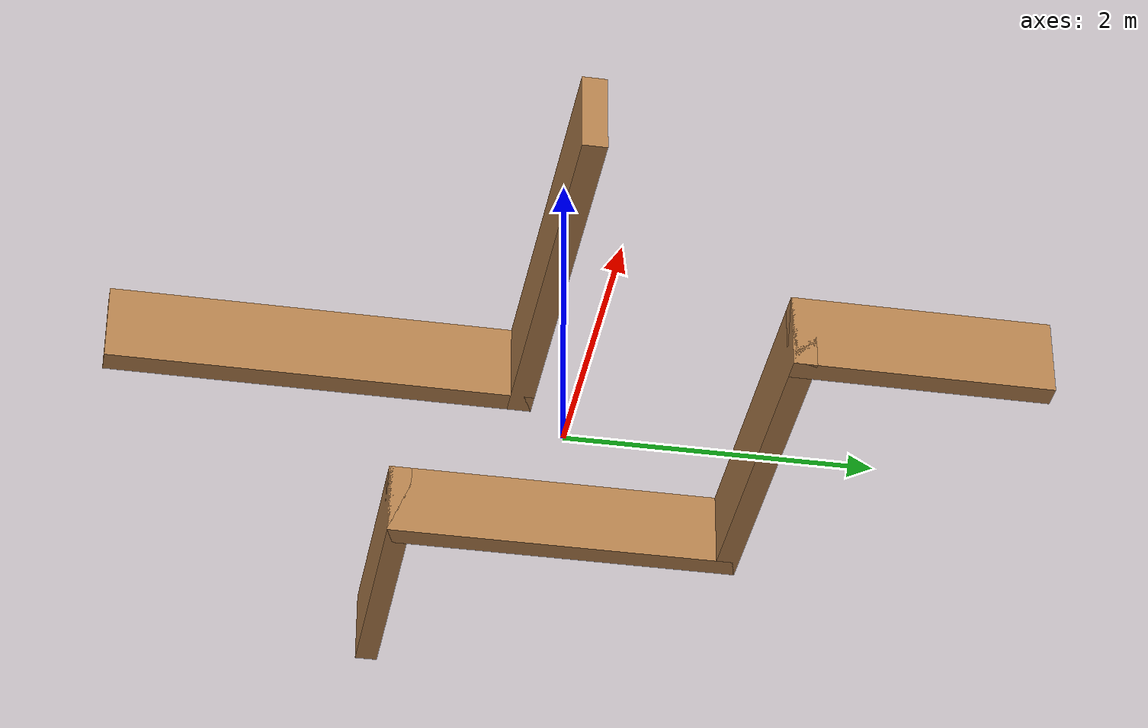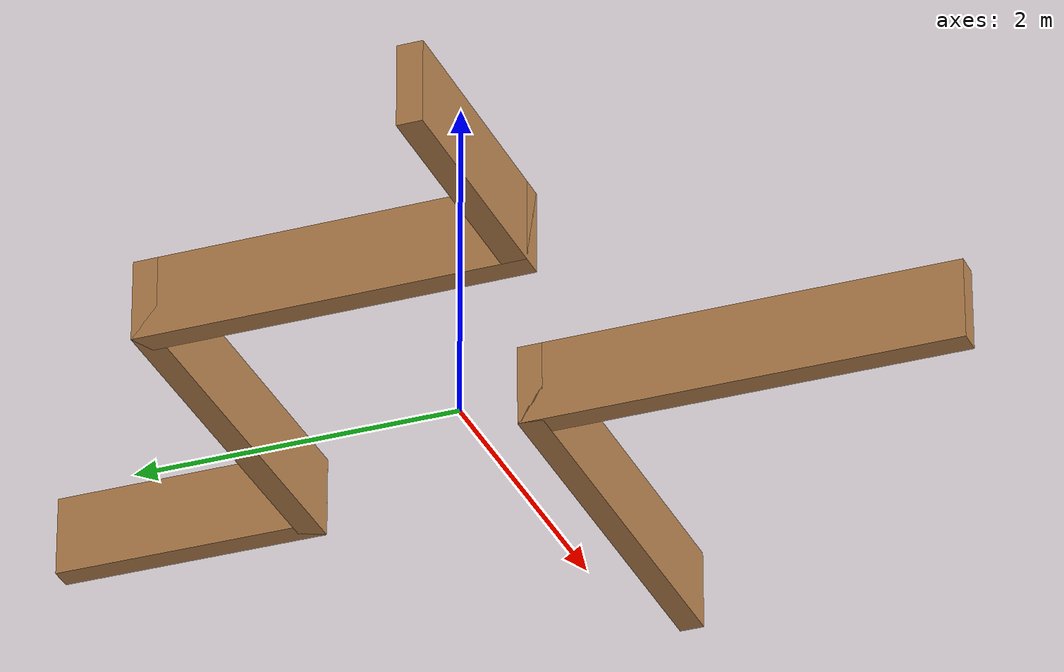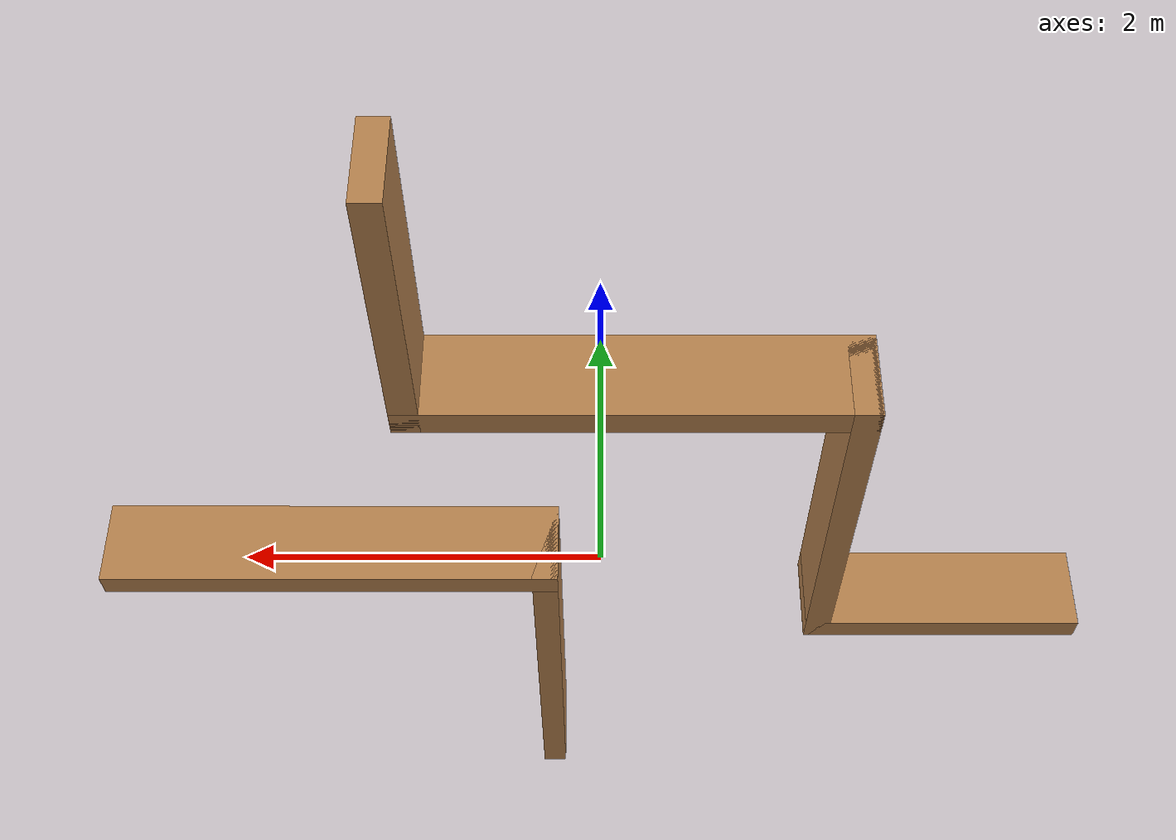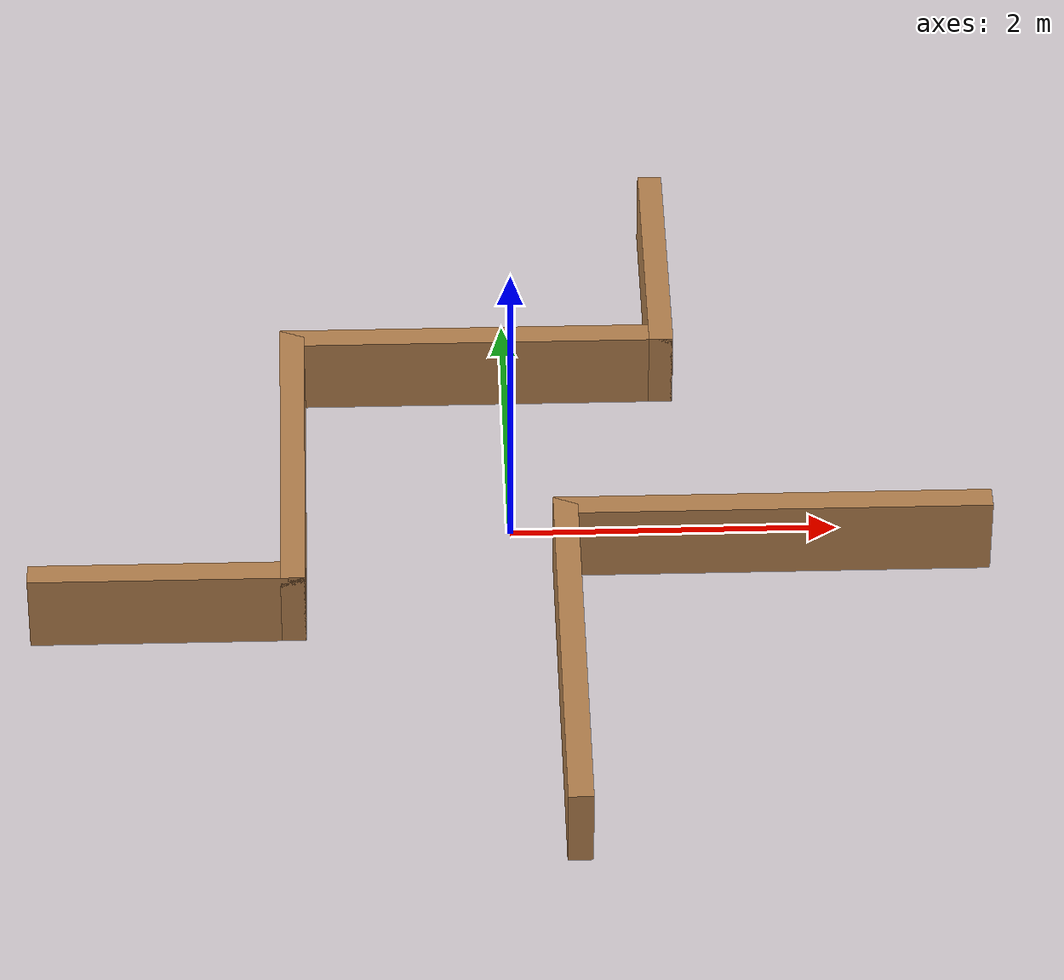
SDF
<?xml version='1.0'?>
<sdf version='1.6'>
  <model name='corridor_walls'>
    <pose frame=''>0 0 0 0 0 0</pose>
    <link name='corridor_wall_1'>
      <collision name='corridor_wall_1_collision'>
        <geometry>
          <box>
            <size>1.66 0.15 0.5</size>
          </box>
        </geometry>
        <pose frame=''>0 0 0.25 0 0 0</pose>
      </collision>
      <visual name='corridor_wall_1_visual'>
        <pose frame=''>0 0 0.25 0 0 0</pose>
        <geometry>
          <box>
            <size>1.66 0.15 0.5</size>
          </box>
        </geometry>
        <material>
          <script>
            <uri>file://media/materials/scripts/gazebo.material</uri>
            <name>Gazebo/Wood</name>
          </script>
          <ambient>1 1 1 1</ambient>
        </material>
      </visual>
      <!-- CORRIDOR_WALLS[0] = (cx=0.975, cy=2.08, length=1.66, yaw=math.pi / 2) -->
      <pose frame=''>0.975 2.08 0 0 0 1.5707963267948966</pose>
    </link>
    <link name='corridor_wall_2'>
      <collision name='corridor_wall_2_collision'>
        <geometry>
          <box>
            <size>2.45 0.15 0.5</size>
          </box>
        </geometry>
        <pose frame=''>0 0 0.25 0 0 0</pose>
      </collision>
      <visual name='corridor_wall_2_visual'>
        <pose frame=''>0 0 0.25 0 0 0</pose>
        <geometry>
          <box>
            <size>2.45 0.15 0.5</size>
          </box>
        </geometry>
        <material>
          <script>
            <uri>file://media/materials/scripts/gazebo.material</uri>
            <name>Gazebo/Wood</name>
          </script>
          <ambient>1 1 1 1</ambient>
        </material>
      </visual>
      <!-- CORRIDOR_WALLS[1] = (cx=-0.175, cy=1.325, length=2.45, yaw=0.0) -->
      <pose frame=''>-0.175 1.325 0 0 0 0.0</pose>
    </link>
    <link name='corridor_wall_3'>
      <collision name='corridor_wall_3_collision'>
        <geometry>
          <box>
            <size>2.35 0.15 0.5</size>
          </box>
        </geometry>
        <pose frame=''>0 0 0.25 0 0 0</pose>
      </collision>
      <visual name='corridor_wall_3_visual'>
        <pose frame=''>0 0 0.25 0 0 0</pose>
        <geometry>
          <box>
            <size>2.35 0.15 0.5</size>
          </box>
        </geometry>
        <material>
          <script>
            <uri>file://media/materials/scripts/gazebo.material</uri>
            <name>Gazebo/Wood</name>
          </script>
          <ambient>1 1 1 1</ambient>
        </material>
      </visual>
      <!-- CORRIDOR_WALLS[2] = (cx=-1.325, cy=0.225, length=2.35, yaw=math.pi / 2) -->
      <pose frame=''>-1.325 0.225 0 0 0 1.5707963267948966</pose>
    </link>
    <link name='corridor_wall_4'>
      <collision name='corridor_wall_4_collision'>
        <geometry>
          <box>
            <size>1.66 0.15 0.5</size>
          </box>
        </geometry>
        <pose frame=''>0 0 0.25 0 0 0</pose>
      </collision>
      <visual name='corridor_wall_4_visual'>
        <pose frame=''>0 0 0.25 0 0 0</pose>
        <geometry>
          <box>
            <size>1.66 0.15 0.5</size>
          </box>
        </geometry>
        <material>
          <script>
            <uri>file://media/materials/scripts/gazebo.material</uri>
            <name>Gazebo/Wood</name>
          </script>
          <ambient>1 1 1 1</ambient>
        </material>
      </visual>
      <!-- CORRIDOR_WALLS[3] = (cx=-2.08, cy=-0.875, length=1.66, yaw=0.0) -->
      <pose frame=''>-2.08 -0.875 0 0 0 0.0</pose>
    </link>
    <link name='corridor_wall_5'>
      <collision name='corridor_wall_5_collision'>
        <geometry>
          <box>
            <size>2.66 0.15 0.5</size>
          </box>
        </geometry>
        <pose frame=''>0 0 0.25 0 0 0</pose>
      </collision>
      <visual name='corridor_wall_5_visual'>
        <pose frame=''>0 0 0.25 0 0 0</pose>
        <geometry>
          <box>
            <size>2.66 0.15 0.5</size>
          </box>
        </geometry>
        <material>
          <script>
            <uri>file://media/materials/scripts/gazebo.material</uri>
            <name>Gazebo/Wood</name>
          </script>
          <ambient>1 1 1 1</ambient>
        </material>
      </visual>
      <!-- CORRIDOR_WALLS[4] = (cx=1.58, cy=-0.325, length=2.66, yaw=0.0) -->
      <pose frame=''>1.58 -0.325 0 0 0 0.0</pose>
    </link>
    <link name='corridor_wall_6'>
      <collision name='corridor_wall_6_collision'>
        <geometry>
          <box>
            <size>2.66 0.15 0.5</size>
          </box>
        </geometry>
        <pose frame=''>0 0 0.25 0 0 0</pose>
      </collision>
      <visual name='corridor_wall_6_visual'>
        <pose frame=''>0 0 0.25 0 0 0</pose>
        <geometry>
          <box>
            <size>2.66 0.15 0.5</size>
          </box>
        </geometry>
        <material>
          <script>
            <uri>file://media/materials/scripts/gazebo.material</uri>
            <name>Gazebo/Wood</name>
          </script>
          <ambient>1 1 1 1</ambient>
        </material>
      </visual>
      <!-- CORRIDOR_WALLS[5] = (cx=0.325, cy=-1.58, length=2.66, yaw=math.pi / 2) -->
      <pose frame=''>0.325 -1.58 0 0 0 1.5707963267948966</pose>
    </link>
    <static>1</static>
  </model>
</sdf>
